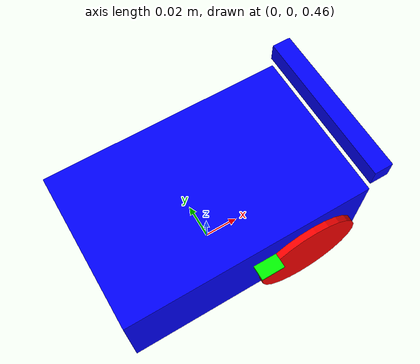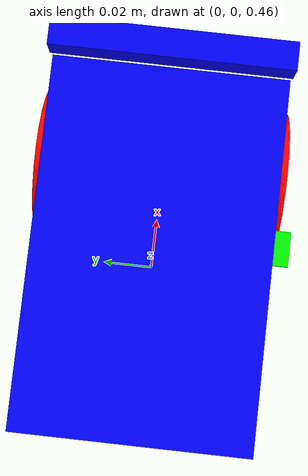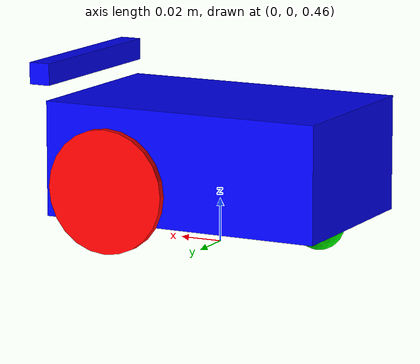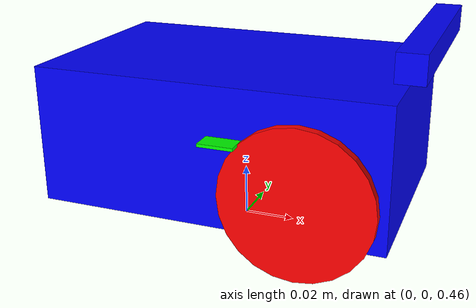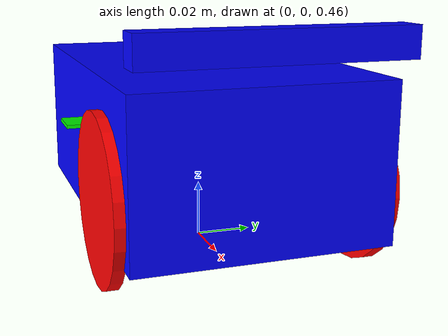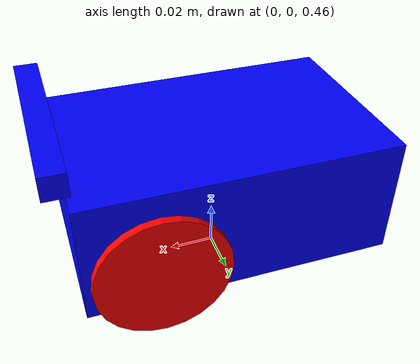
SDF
<?xml version="1.0"?>
<sdf version='1.6'>
<!-- JETSON ROBOT -->
<model name='jetson' canonical_link='base_link'>
      <link name='base_link'>
        <pose relative_to='__model__'>0 0 0.5 0 -0 0</pose>
        <inertial>
          <mass>0.8</mass>
          <inertia>
            <ixx>0.004</ixx>
            <ixy>0</ixy>
            <ixz>0</ixz>
            <iyy>0.004</iyy>
            <iyz>0</iyz>
            <izz>0.004</izz>
          </inertia>
          <pose>0 0 0 0 -0 0</pose>
        </inertial>
        <visual name='visual'>
          <geometry>
            <box>
              <size>0.133 0.085 0.053</size>
            </box>
          </geometry>
          <material>
            <ambient>0 0 1 1</ambient>
            <diffuse>0 0 1 1</diffuse>
            <specular>0 0 1 1</specular>
          </material>
        </visual>
        <collision name='collision'>
          <geometry>
            <box>
              <size>0.133 0.085 0.053</size>
            </box>
          </geometry>
          <max_contacts>10</max_contacts>
          <surface>
            <contact>
              <ode/>
            </contact>
            <bounce/>
            <friction>
              <torsional>
                <ode/>
              </torsional>
              <ode/>
            </friction>
          </surface>
        </collision>
        <self_collide>0</self_collide>
        <enable_wind>0</enable_wind>
        <kinematic>0</kinematic>
      </link>
      <link name='camera_link'>
        <pose relative_to='base_link'>0.07 0 0.0385 0 -0 0</pose>
        <inertial>
          <mass>0.038</mass>
          <inertia>
            <ixx>1e-06</ixx>
            <ixy>0</ixy>
            <ixz>0</ixz>
            <iyy>1e-06</iyy>
            <iyz>0</iyz>
            <izz>1e-06</izz>
          </inertia>
          <pose>0 0 0 0 -0 0</pose>
        </inertial>
        <visual name='visual'>
          <geometry>
            <box>
              <size>0.01 0.085 0.01</size>
            </box>
          </geometry>
          <material>
            <ambient>0 0 1 1</ambient>
            <diffuse>0 0 1 1</diffuse>
            <specular>0 0 1 1</specular>
          </material>
        </visual>
        <collision name='collision'>
          <geometry>
            <box>
              <size>0.01 0.085 0.01</size>
            </box>
          </geometry>
          <max_contacts>10</max_contacts>
          <surface>
            <contact>
              <ode/>
            </contact>
            <bounce/>
            <friction>
              <torsional>
                <ode/>
              </torsional>
              <ode/>
            </friction>
          </surface>
        </collision>
        <sensor name='cameraLeft' type='camera'>
          <pose relative_to='camera_chassis'>0 0.03649 0 0 -0 0</pose>
          <always_on>1</always_on>
          <update_rate>4</update_rate>
          <visualize>1</visualize>
          <topic>camera/left/</topic>
          <camera>
            <horizontal_fov>2.70526</horizontal_fov>
            <image>
              <width>500</width>
              <height>300</height>
              <format>L8</format>
            </image>
            <clip>
              <near>0.1</near>
              <far>100</far>
            </clip>
            <lens>
              <intrinsics>
                <fx>307.999</fx>
                <fy>328.578</fy>
                <cx>280.247</cx>
                <cy>134.934</cy>
                <s>0</s>
              </intrinsics>
              <type>stereographic</type>
              <scale_to_hfov>1</scale_to_hfov>
              <projection>
                <p_fx>312.8884288345382</p_fx>
                <p_fy>312.8884288345382</p_fy>
                <p_cx>312.28302001953125</p_cx>
                <p_cy>135.72957611083984</p_cy>
                <tx>0.0</tx>
                <ty>0.0</ty>
              </projection>
            </lens>
          </camera>
          <plugin name='camera_left_controller' filename='libgazebo_ros_camera.so'>
            <camera_name>cameraLeft</camera_name>
            <frame_name>camera_left</frame_name>
            <hack_baseline>0.07298</hack_baseline>
            <min_depth>0.001</min_depth>
            <max_depth>5.0</max_depth>
          </plugin>
        </sensor>
        <sensor name='cameraRight' type='camera'>
          <pose relative_to='camera_chassis'>0 -0.03649 0 0 -0 0</pose>
          <always_on>1</always_on>
          <update_rate>4</update_rate>
          <visualize>1</visualize>
          <topic>camera/right/</topic>
          <camera>
            <horizontal_fov>2.70526</horizontal_fov>
            <image>
              <width>500</width>
              <height>300</height>
              <format>L8</format>
            </image>
            <clip>
              <near>0.1</near>
              <far>100</far>
            </clip>
            <lens>
              <intrinsics>
                <fx>307.175</fx>
                <fy>328.803</fy>
                <cx>265.747</cx>
                <cy>141.733</cy>
                <s>0</s>
              </intrinsics>
              <type>stereographic</type>
              <scale_to_hfov>1</scale_to_hfov>
              <projection>
                <p_fx>312.8884288345382</p_fx>
                <p_fy>312.8884288345382</p_fy>
                <p_cx>312.28302001953125</p_cx>
                <p_cy>135.72957611083984</p_cy>
                <tx>-22.834775948524072</tx>
                <ty>0.0</ty>
              </projection>
            </lens>
          </camera>
          <plugin name='camera_right_controller' filename='libgazebo_ros_camera.so'>
            <camera_name>cameraRight</camera_name>
            <frame_name>camera_right</frame_name>
            <hack_baseline>0.07298</hack_baseline>
            <min_depth>0.001</min_depth>
            <max_depth>5.0</max_depth>
          </plugin>
        </sensor>
        <self_collide>0</self_collide>
        <enable_wind>0</enable_wind>
        <kinematic>0</kinematic>
      </link>
      <link name='imu_link'>
        <gravity>1</gravity>
        <pose relative_to='base_link'>0.0083 -0.04141 0.0077 0 -0 1.5708</pose>
        <inertial>
          <mass>0.0013</mass>
          <inertia>
            <ixx>1e-06</ixx>
            <ixy>0</ixy>
            <ixz>0</ixz>
            <iyy>1e-06</iyy>
            <iyz>0</iyz>
            <izz>1e-06</izz>
          </inertia>
          <pose>0 0 0 0 -0 0</pose>
        </inertial>
        <visual name='visual'>
          <geometry>
            <box>
              <size>0.018 0.013 0.0012</size>
            </box>
          </geometry>
          <material>
            <ambient>0 1 0 1</ambient>
            <diffuse>0 1 0 1</diffuse>
            <specular>0 1 0 1</specular>
          </material>
        </visual>
        <collision name='collision'>
          <geometry>
            <box>
              <size>0.018 0.013 0.0012</size>
            </box>
          </geometry>
          <max_contacts>10</max_contacts>
          <surface>
            <contact>
              <ode/>
            </contact>
            <bounce/>
            <friction>
              <torsional>
                <ode/>
              </torsional>
              <ode/>
            </friction>
          </surface>
        </collision>
        <sensor name='imu_sensor' type='imu'>
          <always_on>1</always_on>
          <update_rate>50</update_rate>
          <visualize>1</visualize>
          <pose>0.0083 -0.04141 0.0077 0 -0 1.5708</pose>
          <plugin name='imu_plugin' filename='libgazebo_ros_imu_sensor.so'>
            <topic_name>/imu/imu_sensor</topic_name>
            <bodyName>imu_link</bodyName>
            <updateRateHZ>10.0</updateRateHZ>
            <gaussianNoise>0.0</gaussianNoise>
            <xyzOffset>0 0 0</xyzOffset>
            <rpyOffset>0 0 0</rpyOffset>
            <frameName>imu_link</frameName>
            <ros>
              <remapping>~/out:=/imu/data</remapping>
            </ros>
          </plugin>
          <imu/>
        </sensor>
        <self_collide>0</self_collide>
        <enable_wind>0</enable_wind>
        <kinematic>0</kinematic>
      </link>
      <link name='leftWheel'>
        <pose relative_to='base_link'>0.035 0.044 -0.012 -1.5707 0 0</pose>
        <inertial>
          <mass>0.017</mass>
          <inertia>
            <ixx>1e-06</ixx>
            <ixy>0</ixy>
            <ixz>0</ixz>
            <iyy>1e-06</iyy>
            <iyz>0</iyz>
            <izz>1e-06</izz>
          </inertia>
          <pose>0 0 0 0 -0 0</pose>
        </inertial>
        <visual name='visual'>
          <geometry>
            <cylinder>
              <radius>0.0285</radius>
              <length>0.004</length>
            </cylinder>
          </geometry>
          <material>
            <ambient>1 0 0 1</ambient>
            <diffuse>1 0 0 1</diffuse>
            <specular>1 0 0 1</specular>
          </material>
        </visual>
        <collision name='collision'>
          <geometry>
            <cylinder>
              <radius>0.0285</radius>
              <length>0.004</length>
            </cylinder>
            <surface>
              <friction>
                <ode>
                  <mu>0.8</mu>
                  <mu2>0.8</mu2>
                </ode>
              </friction>
            </surface>
          </geometry>
          <max_contacts>10</max_contacts>
          <surface>
            <contact>
              <ode/>
            </contact>
            <bounce/>
            <friction>
              <torsional>
                <ode/>
              </torsional>
              <ode/>
            </friction>
          </surface>
        </collision>
        <self_collide>0</self_collide>
        <enable_wind>0</enable_wind>
        <kinematic>0</kinematic>
      </link>
      <link name='rightWheel'>
        <pose relative_to='base_link'>0.035 -0.044 -0.012 -1.5707 0 0</pose>
        <inertial>
          <mass>0.017</mass>
          <inertia>
            <ixx>2e-05</ixx>
            <ixy>0</ixy>
            <ixz>0</ixz>
            <iyy>2e-05</iyy>
            <iyz>0</iyz>
            <izz>4.1e-05</izz>
          </inertia>
          <pose>0 0 0 0 -0 0</pose>
        </inertial>
        <visual name='visual'>
          <geometry>
            <cylinder>
              <radius>0.0285</radius>
              <length>0.004</length>
            </cylinder>
            <surface>
              <friction>
                <ode>
                  <mu>0.8</mu>
                  <mu2>0.8</mu2>
                </ode>
              </friction>
            </surface>
          </geometry>
          <material>
            <ambient>1 0 0 1</ambient>
            <diffuse>1 0 0 1</diffuse>
            <specular>1 0 0 1</specular>
          </material>
        </visual>
        <collision name='collision'>
          <geometry>
            <cylinder>
              <radius>0.0285</radius>
              <length>0.004</length>
            </cylinder>
            <surface>
              <friction>
                <ode>
                  <mu>0.8</mu>
                  <mu2>0.8</mu2>
                </ode>
              </friction>
            </surface>
          </geometry>
          <max_contacts>10</max_contacts>
          <surface>
            <contact>
              <ode/>
            </contact>
            <bounce/>
            <friction>
              <torsional>
                <ode/>
              </torsional>
              <ode/>
            </friction>
          </surface>
        </collision>
        <self_collide>0</self_collide>
        <enable_wind>0</enable_wind>
        <kinematic>0</kinematic>
      </link>
      <link name='caster'>
        <pose relative_to='base_link'>-0.05 0 -0.0271 0 -0 0</pose>
        <inertial>
          <mass>0.005</mass>
          <inertia>
            <ixx>1e-06</ixx>
            <ixy>0</ixy>
            <ixz>0</ixz>
            <iyy>1e-06</iyy>
            <iyz>0</iyz>
            <izz>1e-06</izz>
          </inertia>
          <pose>0 0 0 0 -0 0</pose>
        </inertial>
        <visual name='visual'>
          <geometry>
            <sphere>
              <radius>0.0113</radius>
            </sphere>
          </geometry>
          <material>
            <ambient>0 1 0 1</ambient>
            <diffuse>0 1 0 1</diffuse>
            <specular>0 1 0 1</specular>
          </material>
        </visual>
        <collision name='collision'>
          <geometry>
            <sphere>
              <radius>0.0113</radius>
            </sphere>
          </geometry>
          <max_contacts>10</max_contacts>
          <surface>
            <contact>
              <ode/>
            </contact>
            <bounce/>
            <friction>
              <torsional>
                <ode/>
              </torsional>
              <ode/>
            </friction>
          </surface>
        </collision>
        <self_collide>0</self_collide>
        <enable_wind>0</enable_wind>
        <kinematic>0</kinematic>
      </link>
      <joint name='cam_joint' type='fixed'>
        <pose relative_to='base_link'>0 0 0 0 -0 0</pose>
        <parent>base_link</parent>
        <child>camera_link</child>
        <axis>
          <xyz expressed_in='__model__'>1 0 0</xyz>
          <limit>
            <lower>-1.79769e+308</lower>
            <upper>1.79769e+308</upper>
          </limit>
        </axis>
      </joint>
      <joint name='leftWheel_joint' type='revolute'>
        <pose relative_to='leftWheel'>0 0 0 0 -0 0</pose>
        <parent>base_link</parent>
        <child>leftWheel</child>
        <axis>
          <xyz expressed_in='__model__'>0 1 0</xyz>
          <limit>
            <lower>-1.79769e+308</lower>
            <upper>1.79769e+308</upper>
          </limit>
          <dynamics>
            <spring_reference>0</spring_reference>
            <spring_stiffness>0</spring_stiffness>
          </dynamics>
        </axis>
      </joint>
      <joint name='rightWheel_joint' type='revolute'>
        <pose relative_to='rightWheel'>0 0 0 0 -0 0</pose>
        <parent>base_link</parent>
        <child>rightWheel</child>
        <axis>
          <xyz expressed_in='__model__'>0 1 0</xyz>
          <limit>
            <lower>-1.79769e+308</lower>
            <upper>1.79769e+308</upper>
          </limit>
          <dynamics>
            <spring_reference>0</spring_reference>
            <spring_stiffness>0</spring_stiffness>
          </dynamics>
        </axis>
      </joint>
      <joint name='caster_wheel' type='ball'>
        <parent>base_link</parent>
        <child>caster</child>
      </joint>
      <joint name='imu_joint' type='fixed'>
        <parent>base_link</parent>
        <child>imu_link</child>
        <origin xyz='0.0083 -0.04141 0.0077'/>
      </joint>
      <plugin name='differential_drive_controller' filename='libgazebo_ros_diff_drive.so'>
        <left_joint>leftWheel_joint</left_joint>
        <right_joint>rightWheel_joint</right_joint>
        <wheel_separation>0.08</wheel_separation>
        <wheel_diameter>0.057</wheel_diameter>
        <max_wheel_acceleration>1</max_wheel_acceleration>
        <max_wheel_torque>20</max_wheel_torque>
        <command_topic>cmd_vel</command_topic>
      </plugin>
    </model>

  </sdf>
